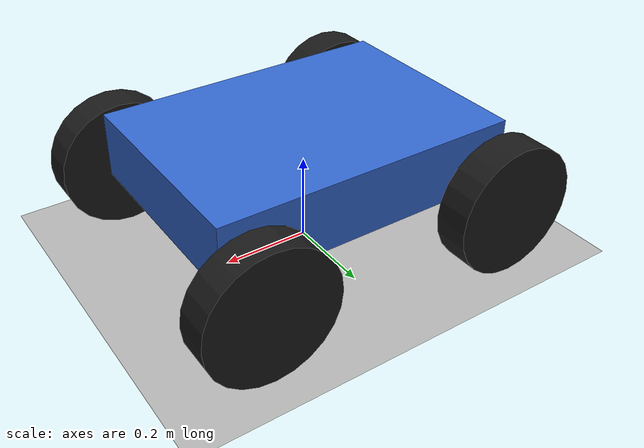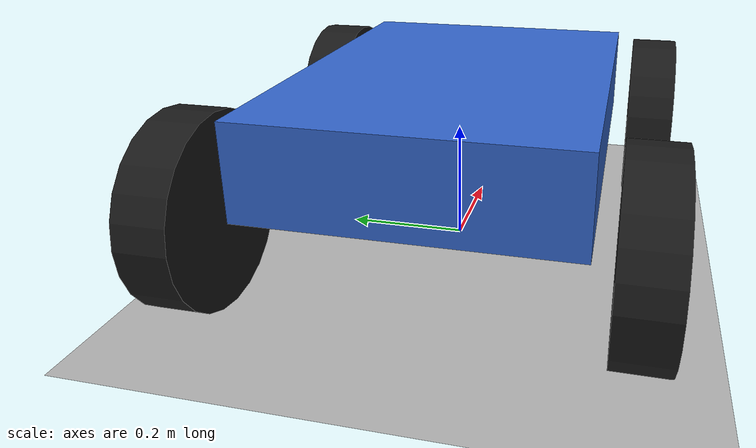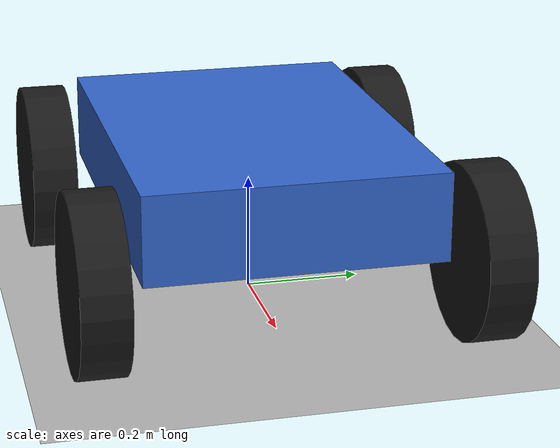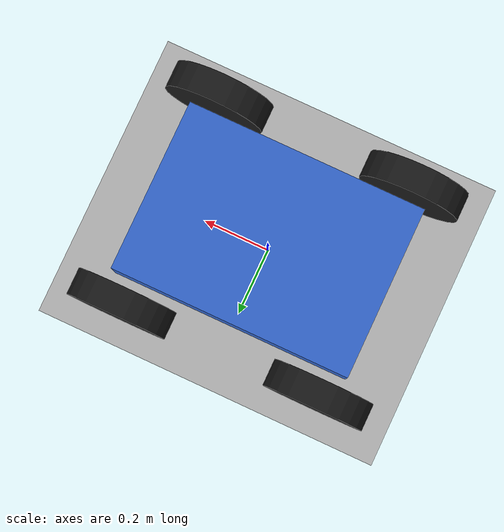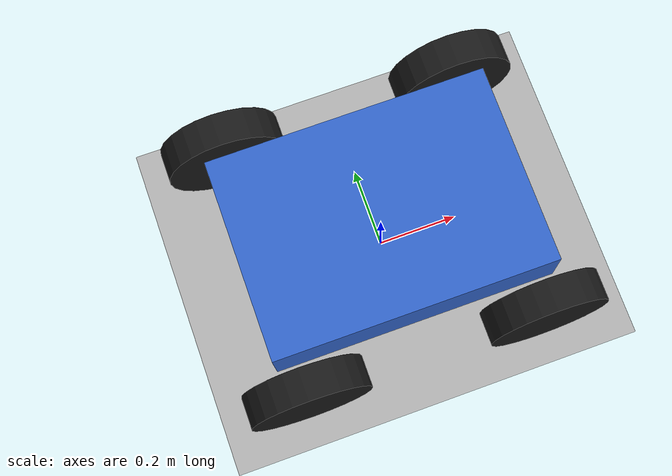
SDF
<?xml version="1.0" ?>

<sdf version="1.10">
    <world name="mecanum_world">

        <physics name="physics" type="ignored">
            <max_step_size>0.001</max_step_size>
            <real_time_factor>1.0</real_time_factor>
        </physics>

        <plugin
            filename="gz-sim-physics-system"
            name="gz::sim::systems::Physics">
        </plugin>

        <plugin
            filename="gz-sim-user-commands-system"
            name="gz::sim::systems::UserCommands">
        </plugin>

        <plugin
            filename="gz-sim-scene-broadcaster-system"
            name="gz::sim::systems::SceneBroadcaster">
        </plugin>

        <light type="directional" name="sun">
            <pose>0 0 10 0 0 0</pose>
            <cast_shadows>true</cast_shadows>

            <diffuse>0.8 0.8 0.8 1</diffuse>
            <specular>0.2 0.2 0.2 1</specular>

            <direction>-0.5 0.1 -0.9</direction>
        </light>

        <!-- ground plane -->
        <model name="ground_plane">
            <static>true</static>

            <link name="ground_link">

                <collision name="ground_collision">
                    <geometry>
                        <plane>
                            <normal>0 0 1</normal>
                            <size>100 100</size>
                        </plane>
                    </geometry>
                </collision>

                <visual name="ground_visual">
                    <geometry>
                        <plane>
                            <normal>0 0 1</normal>
                            <size>100 100</size>
                        </plane>
                    </geometry>

                    <material>
                        <ambient>0.7 0.7 0.7 1</ambient>
                        <diffuse>0.7 0.7 0.7 1</diffuse>
                    </material>
                </visual>

            </link>
        </model>

        <!-- mecanum robot -->
        <model name="mecanum_robot"
               xmlns:gz="http://gazebosim.org/schema">

            <!-- chassis center -->
            <link name="chassis">
                <pose>0 0 0.23 0 0 0</pose>

                <inertial>
                    <mass>8.0</mass>

                    <inertia>
                        <ixx>0.25</ixx>
                        <iyy>0.40</iyy>
                        <izz>0.55</izz>

                        <ixy>0</ixy>
                        <ixz>0</ixz>
                        <iyz>0</iyz>
                    </inertia>
                </inertial>

                <collision name="collision">
                    <geometry>
                        <box>
                            <size>0.70 0.50 0.15</size>
                        </box>
                    </geometry>
                </collision>

                <visual name="visual">
                    <geometry>
                        <box>
                            <size>0.70 0.50 0.15</size>
                        </box>
                    </geometry>

                    <material>
                        <ambient>0.2 0.4 0.8 1</ambient>
                        <diffuse>0.2 0.4 0.8 1</diffuse>
                    </material>
                </visual>
            </link>

            <!-- front left -->
            <link name="front_left_wheel">
                <pose>0.30 0.32 0.15 -1.5708 0 0</pose>

                <inertial>
                    <mass>1.0</mass>

                    <inertia>
                        <ixx>0.01</ixx>
                        <iyy>0.01</iyy>
                        <izz>0.01</izz>

                        <ixy>0</ixy>
                        <ixz>0</ixz>
                        <iyz>0</iyz>
                    </inertia>
                </inertial>

                <visual name="visual">
                    <geometry>
                        <cylinder>
                            <radius>0.15</radius>
                            <length>0.08</length>
                        </cylinder>
                    </geometry>

                    <material>
                        <ambient>0.1 0.1 0.1 1</ambient>
                        <diffuse>0.1 0.1 0.1 1</diffuse>
                    </material>
                </visual>

                <!-- friction direction of sphere collision emulates the mecanum rollers. -->
                <collision name="collision">
                    <geometry>
                        <sphere>
                            <radius>0.15</radius>
                        </sphere>
                    </geometry>

                    <surface>
                        <friction>
                            <ode>
                                <mu>1.0</mu>
                                <mu2>0.0</mu2>

                                <fdir1 gz:expressed_in="chassis">
                                    1 -1 0
                                </fdir1>
                            </ode>
                        </friction>
                    </surface>
                </collision>
            </link>

            <!-- front right -->
            <link name="front_right_wheel">
                <pose>0.30 -0.32 0.15 -1.5708 0 0</pose>

                <inertial>
                    <mass>1.0</mass>

                    <inertia>
                        <ixx>0.01</ixx>
                        <iyy>0.01</iyy>
                        <izz>0.01</izz>

                        <ixy>0</ixy>
                        <ixz>0</ixz>
                        <iyz>0</iyz>
                    </inertia>
                </inertial>

                <visual name="visual">
                    <geometry>
                        <cylinder>
                            <radius>0.15</radius>
                            <length>0.08</length>
                        </cylinder>
                    </geometry>

                    <material>
                        <ambient>0.1 0.1 0.1 1</ambient>
                        <diffuse>0.1 0.1 0.1 1</diffuse>
                    </material>
                </visual>

                <collision name="collision">
                    <geometry>
                        <sphere>
                            <radius>0.15</radius>
                        </sphere>
                    </geometry>

                    <surface>
                        <friction>
                            <ode>
                                <mu>1.0</mu>
                                <mu2>0.0</mu2>

                                <fdir1 gz:expressed_in="chassis">
                                    1 1 0
                                </fdir1>
                            </ode>
                        </friction>
                    </surface>
                </collision>
            </link>

            <!-- rear left -->
            <link name="rear_left_wheel">
                <pose>-0.30 0.32 0.15 -1.5708 0 0</pose>

                <inertial>
                    <mass>1.0</mass>

                    <inertia>
                        <ixx>0.01</ixx>
                        <iyy>0.01</iyy>
                        <izz>0.01</izz>

                        <ixy>0</ixy>
                        <ixz>0</ixz>
                        <iyz>0</iyz>
                    </inertia>
                </inertial>

                <visual name="visual">
                    <geometry>
                        <cylinder>
                            <radius>0.15</radius>
                            <length>0.08</length>
                        </cylinder>
                    </geometry>

                    <material>
                        <ambient>0.1 0.1 0.1 1</ambient>
                        <diffuse>0.1 0.1 0.1 1</diffuse>
                    </material>
                </visual>

                <collision name="collision">
                    <geometry>
                        <sphere>
                            <radius>0.15</radius>
                        </sphere>
                    </geometry>

                    <surface>
                        <friction>
                            <ode>
                                <mu>1.0</mu>
                                <mu2>0.0</mu2>

                                <fdir1 gz:expressed_in="chassis">
                                    1 1 0
                                </fdir1>
                            </ode>
                        </friction>
                    </surface>
                </collision>
            </link>

            <!-- rear right -->
            <link name="rear_right_wheel">
                <pose>-0.30 -0.32 0.15 -1.5708 0 0</pose>

                <inertial>
                    <mass>1.0</mass>

                    <inertia>
                        <ixx>0.01</ixx>
                        <iyy>0.01</iyy>
                        <izz>0.01</izz>

                        <ixy>0</ixy>
                        <ixz>0</ixz>
                        <iyz>0</iyz>
                    </inertia>
                </inertial>

                <visual name="visual">
                    <geometry>
                        <cylinder>
                            <radius>0.15</radius>
                            <length>0.08</length>
                        </cylinder>
                    </geometry>

                    <material>
                        <ambient>0.1 0.1 0.1 1</ambient>
                        <diffuse>0.1 0.1 0.1 1</diffuse>
                    </material>
                </visual>

                <collision name="collision">
                    <geometry>
                        <sphere>
                            <radius>0.15</radius>
                        </sphere>
                    </geometry>

                    <surface>
                        <friction>
                            <ode>
                                <mu>1.0</mu>
                                <mu2>0.0</mu2>

                                <fdir1 gz:expressed_in="chassis">
                                    1 -1 0
                                </fdir1>
                            </ode>
                        </friction>
                    </surface>
                </collision>
            </link>

            <!-- wheel joints -->
            <joint name="front_left_wheel_joint" type="revolute">
                <parent>chassis</parent>
                <child>front_left_wheel</child>

                <axis>
                    <xyz>0 0 1</xyz>
                </axis>
            </joint>

            <joint name="front_right_wheel_joint" type="revolute">
                <parent>chassis</parent>
                <child>front_right_wheel</child>

                <axis>
                    <xyz>0 0 1</xyz>
                </axis>
            </joint>

            <joint name="rear_left_wheel_joint" type="revolute">
                <parent>chassis</parent>
                <child>rear_left_wheel</child>

                <axis>
                    <xyz>0 0 1</xyz>
                </axis>
            </joint>

            <joint name="rear_right_wheel_joint" type="revolute">
                <parent>chassis</parent>
                <child>rear_right_wheel</child>

                <axis>
                    <xyz>0 0 1</xyz>
                </axis>
            </joint>

            <!-- mechanum controller -->
            <plugin
                filename="gz-sim-mecanum-drive-system"
                name="gz::sim::systems::MecanumDrive">

                <front_left_joint>
                    front_left_wheel_joint
                </front_left_joint>

                <front_right_joint>
                    front_right_wheel_joint
                </front_right_joint>

                <back_left_joint>
                    rear_left_wheel_joint
                </back_left_joint>

                <back_right_joint>
                    rear_right_wheel_joint
                </back_right_joint>

                <!-- front to rear wheel-center distance -->
                <wheelbase>0.60</wheelbase>

                <!-- left to right wheel-center distance -->
                <wheel_separation>0.64</wheel_separation>

                <wheel_radius>0.15</wheel_radius>

                <topic>/cmd_vel</topic>
                <odom_publish_frequency>50</odom_publish_frequency>

            </plugin>

        </model>

    </world>
</sdf>
